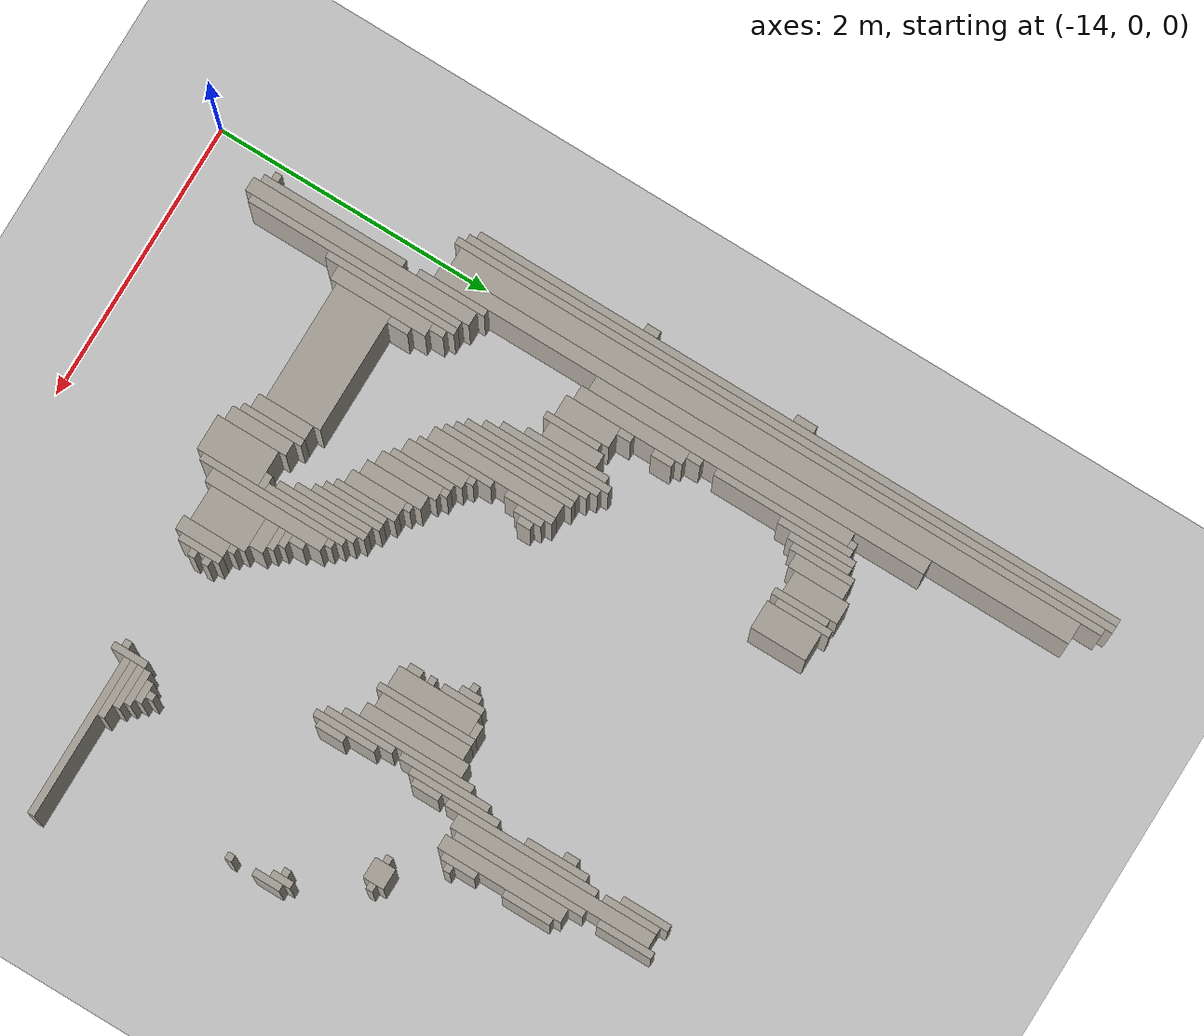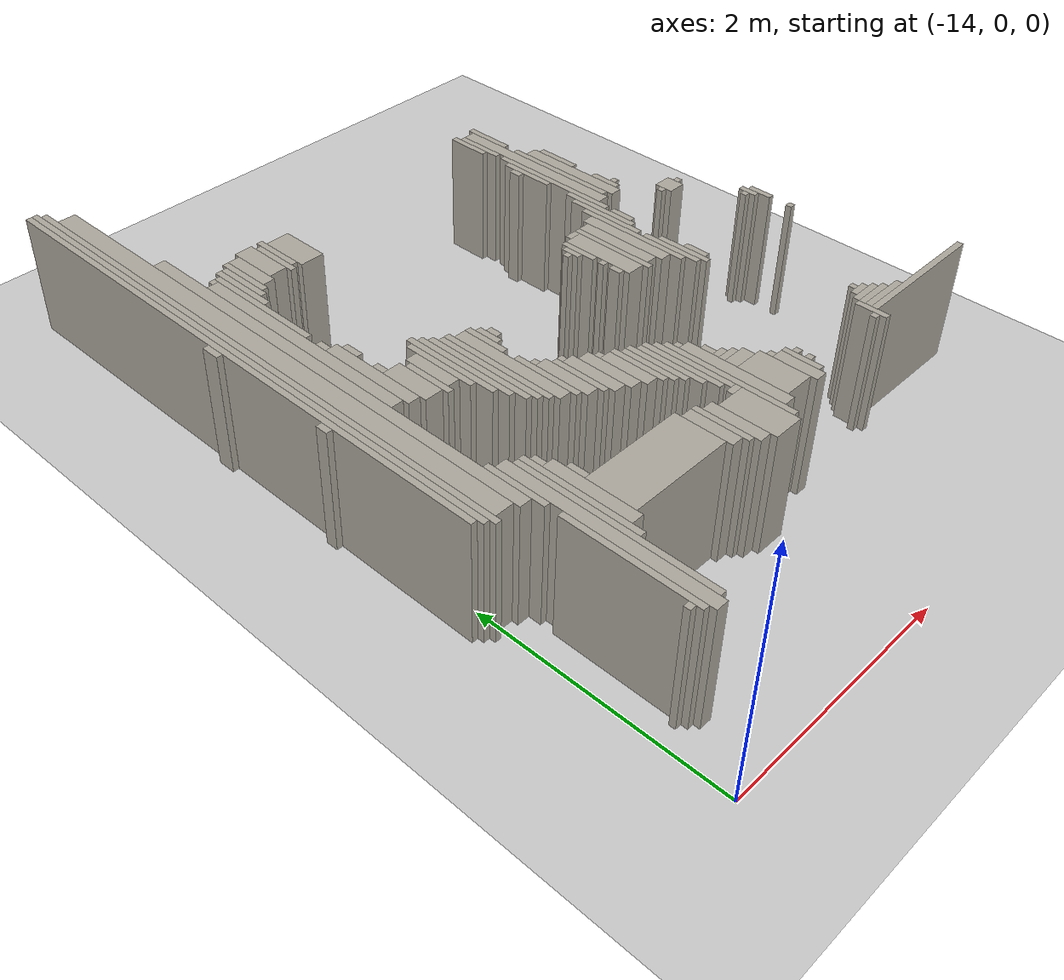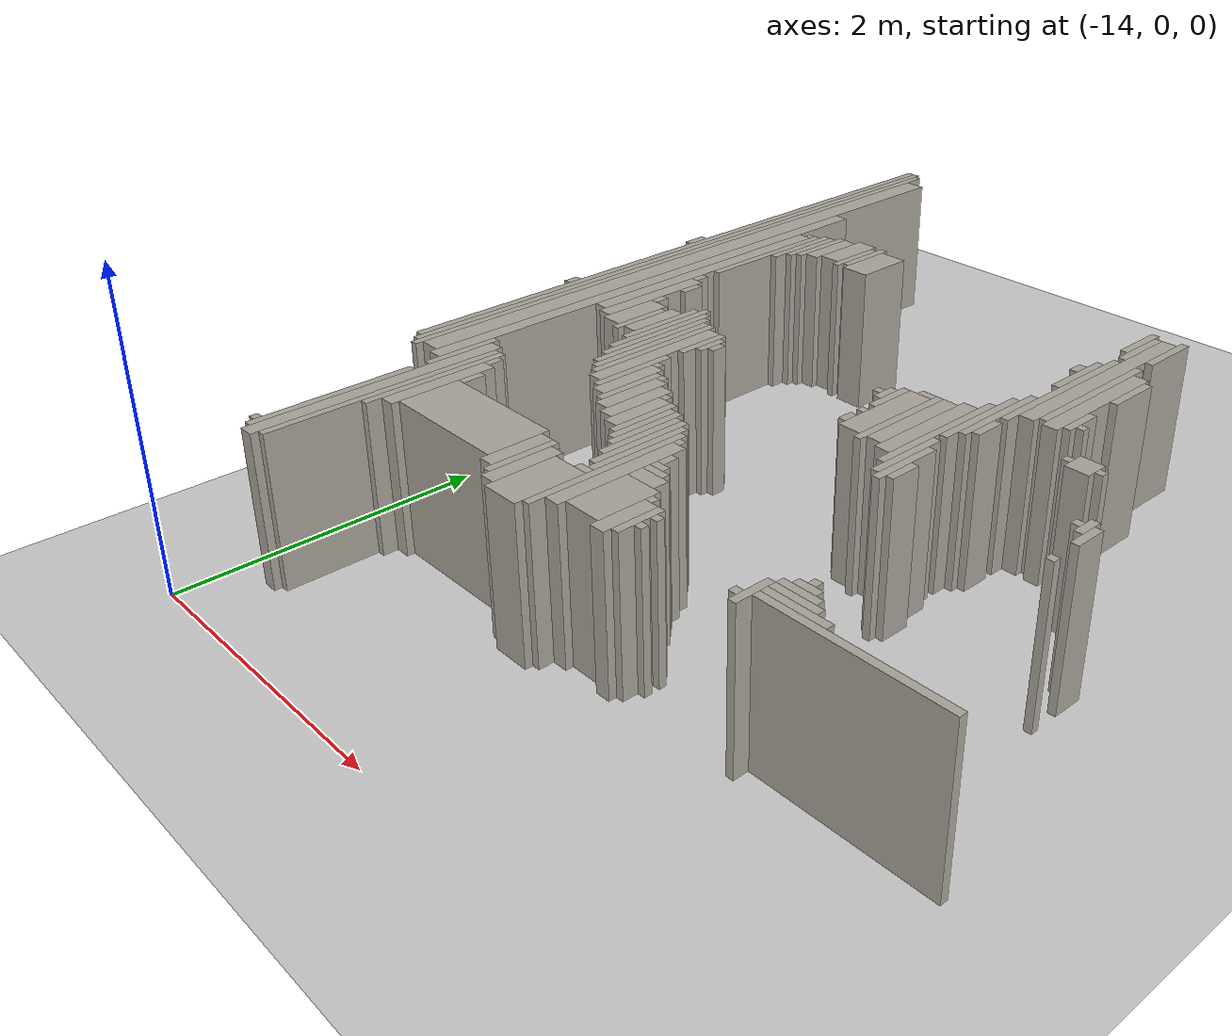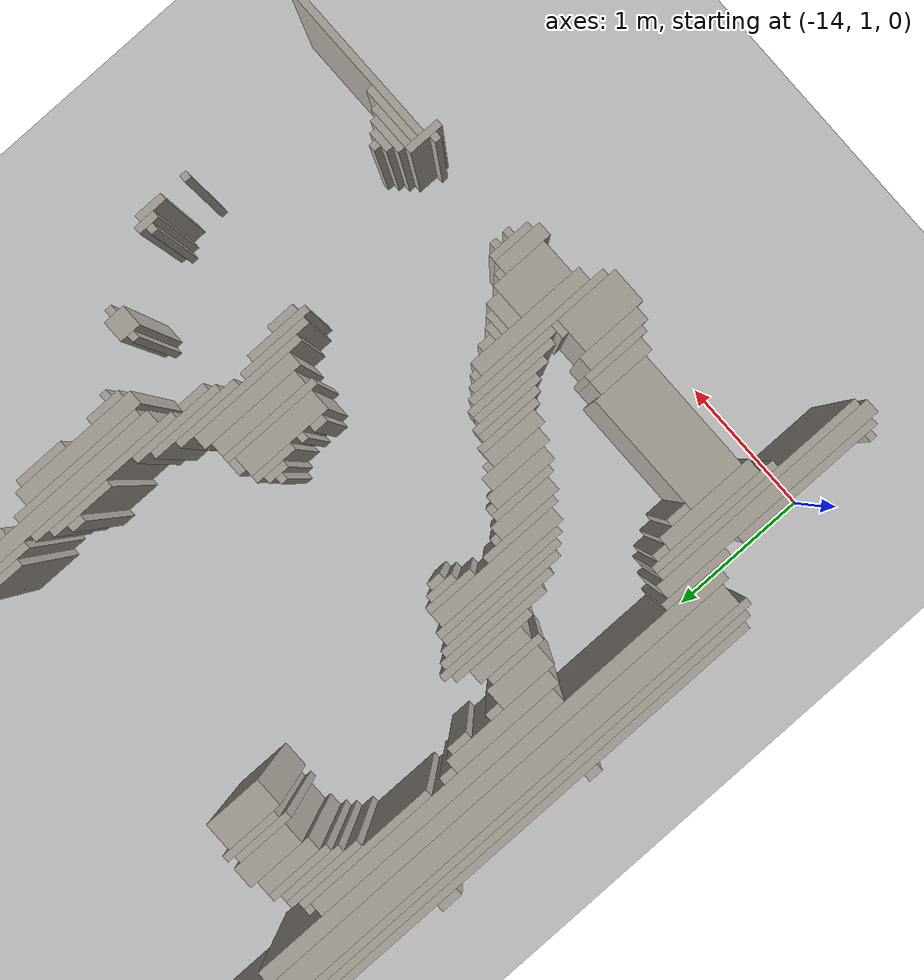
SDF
<sdf version="1.6">
 <world name="fr079_office">
  <include><uri>model://sun</uri></include>
  <include><uri>model://ground_plane</uri></include>
  <model name="fr079_office_walls">
   <static>true</static>
   <link name="w1805">
    <pose>-13.698 1.269 0.500 0 0 0</pose>
    <collision name="c"><geometry><box><size>0.100 1.650 1.000</size></box></geometry></collision>
    <visual name="v">
     <geometry><box><size>0.100 1.650 1.000</size></box></geometry>
     <material><ambient>0.68 0.66 0.62 1</ambient><diffuse>0.68 0.66 0.62 1</diffuse></material>
    </visual>
   </link>
   <link name="w1806">
    <pose>-13.773 1.019 0.500 0 0 0</pose>
    <collision name="c"><geometry><box><size>0.050 1.050 1.000</size></box></geometry></collision>
    <visual name="v">
     <geometry><box><size>0.050 1.050 1.000</size></box></geometry>
     <material><ambient>0.68 0.66 0.62 1</ambient><diffuse>0.68 0.66 0.62 1</diffuse></material>
    </visual>
   </link>
   <link name="w1807">
    <pose>-13.623 1.269 0.500 0 0 0</pose>
    <collision name="c"><geometry><box><size>0.050 1.550 1.000</size></box></geometry></collision>
    <visual name="v">
     <geometry><box><size>0.050 1.550 1.000</size></box></geometry>
     <material><ambient>0.68 0.66 0.62 1</ambient><diffuse>0.68 0.66 0.62 1</diffuse></material>
    </visual>
   </link>
   <link name="w1810">
    <pose>-13.823 0.569 0.500 0 0 0</pose>
    <collision name="c"><geometry><box><size>0.050 0.050 1.000</size></box></geometry></collision>
    <visual name="v">
     <geometry><box><size>0.050 0.050 1.000</size></box></geometry>
     <material><ambient>0.68 0.66 0.62 1</ambient><diffuse>0.68 0.66 0.62 1</diffuse></material>
    </visual>
   </link>
   <link name="w1843">
    <pose>-12.223 1.269 0.500 0 0 0</pose>
    <collision name="c"><geometry><box><size>0.250 0.450 1.000</size></box></geometry></collision>
    <visual name="v">
     <geometry><box><size>0.250 0.450 1.000</size></box></geometry>
     <material><ambient>0.68 0.66 0.62 1</ambient><diffuse>0.68 0.66 0.62 1</diffuse></material>
    </visual>
   </link>
   <link name="w1862">
    <pose>-13.573 1.569 0.500 0 0 0</pose>
    <collision name="c"><geometry><box><size>0.050 0.950 1.000</size></box></geometry></collision>
    <visual name="v">
     <geometry><box><size>0.050 0.950 1.000</size></box></geometry>
     <material><ambient>0.68 0.66 0.62 1</ambient><diffuse>0.68 0.66 0.62 1</diffuse></material>
    </visual>
   </link>
   <link name="w1863">
    <pose>-12.398 1.319 0.500 0 0 0</pose>
    <collision name="c"><geometry><box><size>0.100 0.450 1.000</size></box></geometry></collision>
    <visual name="v">
     <geometry><box><size>0.100 0.450 1.000</size></box></geometry>
     <material><ambient>0.68 0.66 0.62 1</ambient><diffuse>0.68 0.66 0.62 1</diffuse></material>
    </visual>
   </link>
   <link name="w1864">
    <pose>-12.073 1.619 0.500 0 0 0</pose>
    <collision name="c"><geometry><box><size>0.050 1.050 1.000</size></box></geometry></collision>
    <visual name="v">
     <geometry><box><size>0.050 1.050 1.000</size></box></geometry>
     <material><ambient>0.68 0.66 0.62 1</ambient><diffuse>0.68 0.66 0.62 1</diffuse></material>
    </visual>
   </link>
   <link name="w1883">
    <pose>-12.473 1.369 0.500 0 0 0</pose>
    <collision name="c"><geometry><box><size>0.050 0.450 1.000</size></box></geometry></collision>
    <visual name="v">
     <geometry><box><size>0.050 0.450 1.000</size></box></geometry>
     <material><ambient>0.68 0.66 0.62 1</ambient><diffuse>0.68 0.66 0.62 1</diffuse></material>
    </visual>
   </link>
   <link name="w1908">
    <pose>-13.498 1.544 0.500 0 0 0</pose>
    <collision name="c"><geometry><box><size>0.100 0.700 1.000</size></box></geometry></collision>
    <visual name="v">
     <geometry><box><size>0.100 0.700 1.000</size></box></geometry>
     <material><ambient>0.68 0.66 0.62 1</ambient><diffuse>0.68 0.66 0.62 1</diffuse></material>
    </visual>
   </link>
   <link name="w1909">
    <pose>-12.548 1.394 0.500 0 0 0</pose>
    <collision name="c"><geometry><box><size>0.100 0.400 1.000</size></box></geometry></collision>
    <visual name="v">
     <geometry><box><size>0.100 0.400 1.000</size></box></geometry>
     <material><ambient>0.68 0.66 0.62 1</ambient><diffuse>0.68 0.66 0.62 1</diffuse></material>
    </visual>
   </link>
   <link name="w1910">
    <pose>-11.998 1.619 0.500 0 0 0</pose>
    <collision name="c"><geometry><box><size>0.100 0.850 1.000</size></box></geometry></collision>
    <visual name="v">
     <geometry><box><size>0.100 0.850 1.000</size></box></geometry>
     <material><ambient>0.68 0.66 0.62 1</ambient><diffuse>0.68 0.66 0.62 1</diffuse></material>
    </visual>
   </link>
   <link name="w1911">
    <pose>-11.648 1.369 0.500 0 0 0</pose>
    <collision name="c"><geometry><box><size>0.100 0.350 1.000</size></box></geometry></collision>
    <visual name="v">
     <geometry><box><size>0.100 0.350 1.000</size></box></geometry>
     <material><ambient>0.68 0.66 0.62 1</ambient><diffuse>0.68 0.66 0.62 1</diffuse></material>
    </visual>
   </link>
   <link name="w1940">
    <pose>-13.023 1.444 0.500 0 0 0</pose>
    <collision name="c"><geometry><box><size>0.850 0.400 1.000</size></box></geometry></collision>
    <visual name="v">
     <geometry><box><size>0.850 0.400 1.000</size></box></geometry>
     <material><ambient>0.68 0.66 0.62 1</ambient><diffuse>0.68 0.66 0.62 1</diffuse></material>
    </visual>
   </link>
   <link name="w1941">
    <pose>-11.823 1.444 0.500 0 0 0</pose>
    <collision name="c"><geometry><box><size>0.250 0.400 1.000</size></box></geometry></collision>
    <visual name="v">
     <geometry><box><size>0.250 0.400 1.000</size></box></geometry>
     <material><ambient>0.68 0.66 0.62 1</ambient><diffuse>0.68 0.66 0.62 1</diffuse></material>
    </visual>
   </link>
   <link name="w1942">
    <pose>-11.573 1.394 0.500 0 0 0</pose>
    <collision name="c"><geometry><box><size>0.050 0.300 1.000</size></box></geometry></collision>
    <visual name="v">
     <geometry><box><size>0.050 0.300 1.000</size></box></geometry>
     <material><ambient>0.68 0.66 0.62 1</ambient><diffuse>0.68 0.66 0.62 1</diffuse></material>
    </visual>
   </link>
   <link name="w1943">
    <pose>-10.773 1.369 0.500 0 0 0</pose>
    <collision name="c"><geometry><box><size>0.050 0.250 1.000</size></box></geometry></collision>
    <visual name="v">
     <geometry><box><size>0.050 0.250 1.000</size></box></geometry>
     <material><ambient>0.68 0.66 0.62 1</ambient><diffuse>0.68 0.66 0.62 1</diffuse></material>
    </visual>
   </link>
   <link name="w1961">
    <pose>-10.823 1.319 0.500 0 0 0</pose>
    <collision name="c"><geometry><box><size>0.050 0.050 1.000</size></box></geometry></collision>
    <visual name="v">
     <geometry><box><size>0.050 0.050 1.000</size></box></geometry>
     <material><ambient>0.68 0.66 0.62 1</ambient><diffuse>0.68 0.66 0.62 1</diffuse></material>
    </visual>
   </link>
   <link name="w1973">
    <pose>-11.523 1.369 0.500 0 0 0</pose>
    <collision name="c"><geometry><box><size>0.050 0.050 1.000</size></box></geometry></collision>
    <visual name="v">
     <geometry><box><size>0.050 0.050 1.000</size></box></geometry>
     <material><ambient>0.68 0.66 0.62 1</ambient><diffuse>0.68 0.66 0.62 1</diffuse></material>
    </visual>
   </link>
   <link name="w1974">
    <pose>-10.173 1.369 0.500 0 0 0</pose>
    <collision name="c"><geometry><box><size>1.150 0.050 1.000</size></box></geometry></collision>
    <visual name="v">
     <geometry><box><size>1.150 0.050 1.000</size></box></geometry>
     <material><ambient>0.68 0.66 0.62 1</ambient><diffuse>0.68 0.66 0.62 1</diffuse></material>
    </visual>
   </link>
   <link name="w1988">
    <pose>-10.548 1.419 0.500 0 0 0</pose>
    <collision name="c"><geometry><box><size>0.400 0.050 1.000</size></box></geometry></collision>
    <visual name="v">
     <geometry><box><size>0.400 0.050 1.000</size></box></geometry>
     <material><ambient>0.68 0.66 0.62 1</ambient><diffuse>0.68 0.66 0.62 1</diffuse></material>
    </visual>
   </link>
   <link name="w2007">
    <pose>-11.523 1.469 0.500 0 0 0</pose>
    <collision name="c"><geometry><box><size>0.050 0.050 1.000</size></box></geometry></collision>
    <visual name="v">
     <geometry><box><size>0.050 0.050 1.000</size></box></geometry>
     <material><ambient>0.68 0.66 0.62 1</ambient><diffuse>0.68 0.66 0.62 1</diffuse></material>
    </visual>
   </link>
   <link name="w2008">
    <pose>-10.598 1.469 0.500 0 0 0</pose>
    <collision name="c"><geometry><box><size>0.300 0.050 1.000</size></box></geometry></collision>
    <visual name="v">
     <geometry><box><size>0.300 0.050 1.000</size></box></geometry>
     <material><ambient>0.68 0.66 0.62 1</ambient><diffuse>0.68 0.66 0.62 1</diffuse></material>
    </visual>
   </link>
   <link name="w2024">
    <pose>-12.148 1.519 0.500 0 0 0</pose>
    <collision name="c"><geometry><box><size>0.100 0.050 1.000</size></box></geometry></collision>
    <visual name="v">
     <geometry><box><size>0.100 0.050 1.000</size></box></geometry>
     <material><ambient>0.68 0.66 0.62 1</ambient><diffuse>0.68 0.66 0.62 1</diffuse></material>
    </visual>
   </link>
   <link name="w2025">
    <pose>-10.623 1.519 0.500 0 0 0</pose>
    <collision name="c"><geometry><box><size>0.250 0.050 1.000</size></box></geometry></collision>
    <visual name="v">
     <geometry><box><size>0.250 0.050 1.000</size></box></geometry>
     <material><ambient>0.68 0.66 0.62 1</ambient><diffuse>0.68 0.66 0.62 1</diffuse></material>
    </visual>
   </link>
   <link name="w2037">
    <pose>-12.123 1.869 0.500 0 0 0</pose>
    <collision name="c"><geometry><box><size>0.050 0.650 1.000</size></box></geometry></collision>
    <visual name="v">
     <geometry><box><size>0.050 0.650 1.000</size></box></geometry>
     <material><ambient>0.68 0.66 0.62 1</ambient><diffuse>0.68 0.66 0.62 1</diffuse></material>
    </visual>
   </link>
   <link name="w2038">
    <pose>-11.673 1.569 0.500 0 0 0</pose>
    <collision name="c"><geometry><box><size>0.050 0.050 1.000</size></box></geometry></collision>
    <visual name="v">
     <geometry><box><size>0.050 0.050 1.000</size></box></geometry>
     <material><ambient>0.68 0.66 0.62 1</ambient><diffuse>0.68 0.66 0.62 1</diffuse></material>
    </visual>
   </link>
   <link name="w2039">
    <pose>-10.623 1.569 0.500 0 0 0</pose>
    <collision name="c"><geometry><box><size>0.150 0.050 1.000</size></box></geometry></collision>
    <visual name="v">
     <geometry><box><size>0.150 0.050 1.000</size></box></geometry>
     <material><ambient>0.68 0.66 0.62 1</ambient><diffuse>0.68 0.66 0.62 1</diffuse></material>
    </visual>
   </link>
   <link name="w2055">
    <pose>-12.173 1.919 0.500 0 0 0</pose>
    <collision name="c"><geometry><box><size>0.050 0.650 1.000</size></box></geometry></collision>
    <visual name="v">
     <geometry><box><size>0.050 0.650 1.000</size></box></geometry>
     <material><ambient>0.68 0.66 0.62 1</ambient><diffuse>0.68 0.66 0.62 1</diffuse></material>
    </visual>
   </link>
   <link name="w2056">
    <pose>-10.623 1.619 0.500 0 0 0</pose>
    <collision name="c"><geometry><box><size>0.050 0.050 1.000</size></box></geometry></collision>
    <visual name="v">
     <geometry><box><size>0.050 0.050 1.000</size></box></geometry>
     <material><ambient>0.68 0.66 0.62 1</ambient><diffuse>0.68 0.66 0.62 1</diffuse></material>
    </visual>
   </link>
   <link name="w2068">
    <pose>-13.773 1.894 0.500 0 0 0</pose>
    <collision name="c"><geometry><box><size>0.050 0.500 1.000</size></box></geometry></collision>
    <visual name="v">
     <geometry><box><size>0.050 0.500 1.000</size></box></geometry>
     <material><ambient>0.68 0.66 0.62 1</ambient><diffuse>0.68 0.66 0.62 1</diffuse></material>
    </visual>
   </link>
   <link name="w2069">
    <pose>-13.423 1.719 0.500 0 0 0</pose>
    <collision name="c"><geometry><box><size>0.050 0.150 1.000</size></box></geometry></collision>
    <visual name="v">
     <geometry><box><size>0.050 0.150 1.000</size></box></geometry>
     <material><ambient>0.68 0.66 0.62 1</ambient><diffuse>0.68 0.66 0.62 1</diffuse></material>
    </visual>
   </link>
   <link name="w2070">
    <pose>-11.848 1.694 0.500 0 0 0</pose>
    <collision name="c"><geometry><box><size>0.200 0.100 1.000</size></box></geometry></collision>
    <visual name="v">
     <geometry><box><size>0.200 0.100 1.000</size></box></geometry>
     <material><ambient>0.68 0.66 0.62 1</ambient><diffuse>0.68 0.66 0.62 1</diffuse></material>
    </visual>
   </link>
   <link name="w2080">
    <pose>-12.223 1.969 0.500 0 0 0</pose>
    <collision name="c"><geometry><box><size>0.050 0.550 1.000</size></box></geometry></collision>
    <visual name="v">
     <geometry><box><size>0.050 0.550 1.000</size></box></geometry>
     <material><ambient>0.68 0.66 0.62 1</ambient><diffuse>0.68 0.66 0.62 1</diffuse></material>
    </visual>
   </link>
   <link name="w2092">
    <pose>-14.073 4.119 0.500 0 0 0</pose>
    <collision name="c"><geometry><box><size>0.050 4.750 1.000</size></box></geometry></collision>
    <visual name="v">
     <geometry><box><size>0.050 4.750 1.000</size></box></geometry>
     <material><ambient>0.68 0.66 0.62 1</ambient><diffuse>0.68 0.66 0.62 1</diffuse></material>
    </visual>
   </link>
   <link name="w2093">
    <pose>-13.848 3.544 0.500 0 0 0</pose>
    <collision name="c"><geometry><box><size>0.100 3.600 1.000</size></box></geometry></collision>
    <visual name="v">
     <geometry><box><size>0.100 3.600 1.000</size></box></geometry>
     <material><ambient>0.68 0.66 0.62 1</ambient><diffuse>0.68 0.66 0.62 1</diffuse></material>
    </visual>
   </link>
   <link name="w2094">
    <pose>-11.873 1.769 0.500 0 0 0</pose>
    <collision name="c"><geometry><box><size>0.150 0.050 1.000</size></box></geometry></collision>
    <visual name="v">
     <geometry><box><size>0.150 0.050 1.000</size></box></geometry>
     <material><ambient>0.68 0.66 0.62 1</ambient><diffuse>0.68 0.66 0.62 1</diffuse></material>
    </visual>
   </link>
   <link name="w2106">
    <pose>-14.123 4.169 0.500 0 0 0</pose>
    <collision name="c"><geometry><box><size>0.050 4.750 1.000</size></box></geometry></collision>
    <visual name="v">
     <geometry><box><size>0.050 4.750 1.000</size></box></geometry>
     <material><ambient>0.68 0.66 0.62 1</ambient><diffuse>0.68 0.66 0.62 1</diffuse></material>
    </visual>
   </link>
   <link name="w2107">
    <pose>-13.973 4.069 0.500 0 0 0</pose>
    <collision name="c"><geometry><box><size>0.150 4.550 1.000</size></box></geometry></collision>
    <visual name="v">
     <geometry><box><size>0.150 4.550 1.000</size></box></geometry>
     <material><ambient>0.68 0.66 0.62 1</ambient><diffuse>0.68 0.66 0.62 1</diffuse></material>
    </visual>
   </link>
   <link name="w2108">
    <pose>-12.273 2.044 0.500 0 0 0</pose>
    <collision name="c"><geometry><box><size>0.050 0.500 1.000</size></box></geometry></collision>
    <visual name="v">
     <geometry><box><size>0.050 0.500 1.000</size></box></geometry>
     <material><ambient>0.68 0.66 0.62 1</ambient><diffuse>0.68 0.66 0.62 1</diffuse></material>
    </visual>
   </link>
   <link name="w2109">
    <pose>-11.898 1.819 0.500 0 0 0</pose>
    <collision name="c"><geometry><box><size>0.100 0.050 1.000</size></box></geometry></collision>
    <visual name="v">
     <geometry><box><size>0.100 0.050 1.000</size></box></geometry>
     <material><ambient>0.68 0.66 0.62 1</ambient><diffuse>0.68 0.66 0.62 1</diffuse></material>
    </visual>
   </link>
   <link name="w2130">
    <pose>-14.173 4.194 0.500 0 0 0</pose>
    <collision name="c"><geometry><box><size>0.050 4.700 1.000</size></box></geometry></collision>
    <visual name="v">
     <geometry><box><size>0.050 4.700 1.000</size></box></geometry>
     <material><ambient>0.68 0.66 0.62 1</ambient><diffuse>0.68 0.66 0.62 1</diffuse></material>
    </visual>
   </link>
   <link name="w2131">
    <pose>-12.323 2.069 0.500 0 0 0</pose>
    <collision name="c"><geometry><box><size>0.050 0.450 1.000</size></box></geometry></collision>
    <visual name="v">
     <geometry><box><size>0.050 0.450 1.000</size></box></geometry>
     <material><ambient>0.68 0.66 0.62 1</ambient><diffuse>0.68 0.66 0.62 1</diffuse></material>
    </visual>
   </link>
   <link name="w2132">
    <pose>-11.923 1.894 0.500 0 0 0</pose>
    <collision name="c"><geometry><box><size>0.050 0.100 1.000</size></box></geometry></collision>
    <visual name="v">
     <geometry><box><size>0.050 0.100 1.000</size></box></geometry>
     <material><ambient>0.68 0.66 0.62 1</ambient><diffuse>0.68 0.66 0.62 1</diffuse></material>
    </visual>
   </link>
   <link name="w2148">
    <pose>-13.523 1.944 0.500 0 0 0</pose>
    <collision name="c"><geometry><box><size>0.050 0.100 1.000</size></box></geometry></collision>
    <visual name="v">
     <geometry><box><size>0.050 0.100 1.000</size></box></geometry>
     <material><ambient>0.68 0.66 0.62 1</ambient><diffuse>0.68 0.66 0.62 1</diffuse></material>
    </visual>
   </link>
   <link name="w2149">
    <pose>-12.373 2.119 0.500 0 0 0</pose>
    <collision name="c"><geometry><box><size>0.050 0.450 1.000</size></box></geometry></collision>
    <visual name="v">
     <geometry><box><size>0.050 0.450 1.000</size></box></geometry>
     <material><ambient>0.68 0.66 0.62 1</ambient><diffuse>0.68 0.66 0.62 1</diffuse></material>
    </visual>
   </link>
   <link name="w2156">
    <pose>-12.448 2.144 0.500 0 0 0</pose>
    <collision name="c"><geometry><box><size>0.100 0.400 1.000</size></box></geometry></collision>
    <visual name="v">
     <geometry><box><size>0.100 0.400 1.000</size></box></geometry>
     <material><ambient>0.68 0.66 0.62 1</ambient><diffuse>0.68 0.66 0.62 1</diffuse></material>
    </visual>
   </link>
   <link name="w2171">
    <pose>-12.548 2.219 0.500 0 0 0</pose>
    <collision name="c"><geometry><box><size>0.100 0.450 1.000</size></box></geometry></collision>
    <visual name="v">
     <geometry><box><size>0.100 0.450 1.000</size></box></geometry>
     <material><ambient>0.68 0.66 0.62 1</ambient><diffuse>0.68 0.66 0.62 1</diffuse></material>
    </visual>
   </link>
   <link name="w2181">
    <pose>-12.648 2.269 0.500 0 0 0</pose>
    <collision name="c"><geometry><box><size>0.100 0.450 1.000</size></box></geometry></collision>
    <visual name="v">
     <geometry><box><size>0.100 0.450 1.000</size></box></geometry>
     <material><ambient>0.68 0.66 0.62 1</ambient><diffuse>0.68 0.66 0.62 1</diffuse></material>
    </visual>
   </link>
   <link name="w2182">
    <pose>-12.023 2.069 0.500 0 0 0</pose>
    <collision name="c"><geometry><box><size>0.050 0.050 1.000</size></box></geometry></collision>
    <visual name="v">
     <geometry><box><size>0.050 0.050 1.000</size></box></geometry>
     <material><ambient>0.68 0.66 0.62 1</ambient><diffuse>0.68 0.66 0.62 1</diffuse></material>
    </visual>
   </link>
   <link name="w2192">
    <pose>-12.723 2.319 0.500 0 0 0</pose>
    <collision name="c"><geometry><box><size>0.050 0.450 1.000</size></box></geometry></collision>
    <visual name="v">
     <geometry><box><size>0.050 0.450 1.000</size></box></geometry>
     <material><ambient>0.68 0.66 0.62 1</ambient><diffuse>0.68 0.66 0.62 1</diffuse></material>
    </visual>
   </link>
   <link name="w2202">
    <pose>-12.798 2.369 0.500 0 0 0</pose>
    <collision name="c"><geometry><box><size>0.100 0.450 1.000</size></box></geometry></collision>
    <visual name="v">
     <geometry><box><size>0.100 0.450 1.000</size></box></geometry>
     <material><ambient>0.68 0.66 0.62 1</ambient><diffuse>0.68 0.66 0.62 1</diffuse></material>
    </visual>
   </link>
   <link name="w2209">
    <pose>-12.873 2.469 0.500 0 0 0</pose>
    <collision name="c"><geometry><box><size>0.050 0.550 1.000</size></box></geometry></collision>
    <visual name="v">
     <geometry><box><size>0.050 0.550 1.000</size></box></geometry>
     <material><ambient>0.68 0.66 0.62 1</ambient><diffuse>0.68 0.66 0.62 1</diffuse></material>
    </visual>
   </link>
   <link name="w2222">
    <pose>-12.948 2.719 0.500 0 0 0</pose>
    <collision name="c"><geometry><box><size>0.100 0.950 1.000</size></box></geometry></collision>
    <visual name="v">
     <geometry><box><size>0.100 0.950 1.000</size></box></geometry>
     <material><ambient>0.68 0.66 0.62 1</ambient><diffuse>0.68 0.66 0.62 1</diffuse></material>
    </visual>
   </link>
   <link name="w2231">
    <pose>-13.023 2.769 0.500 0 0 0</pose>
    <collision name="c"><geometry><box><size>0.050 0.950 1.000</size></box></geometry></collision>
    <visual name="v">
     <geometry><box><size>0.050 0.950 1.000</size></box></geometry>
     <material><ambient>0.68 0.66 0.62 1</ambient><diffuse>0.68 0.66 0.62 1</diffuse></material>
    </visual>
   </link>
   <link name="w2242">
    <pose>-13.073 2.794 0.500 0 0 0</pose>
    <collision name="c"><geometry><box><size>0.050 0.900 1.000</size></box></geometry></collision>
    <visual name="v">
     <geometry><box><size>0.050 0.900 1.000</size></box></geometry>
     <material><ambient>0.68 0.66 0.62 1</ambient><diffuse>0.68 0.66 0.62 1</diffuse></material>
    </visual>
   </link>
   <link name="w2243">
    <pose>-12.473 2.369 0.500 0 0 0</pose>
    <collision name="c"><geometry><box><size>0.050 0.050 1.000</size></box></geometry></collision>
    <visual name="v">
     <geometry><box><size>0.050 0.050 1.000</size></box></geometry>
     <material><ambient>0.68 0.66 0.62 1</ambient><diffuse>0.68 0.66 0.62 1</diffuse></material>
    </visual>
   </link>
   <link name="w2253">
    <pose>-13.123 2.844 0.500 0 0 0</pose>
    <collision name="c"><geometry><box><size>0.050 0.900 1.000</size></box></geometry></collision>
    <visual name="v">
     <geometry><box><size>0.050 0.900 1.000</size></box></geometry>
     <material><ambient>0.68 0.66 0.62 1</ambient><diffuse>0.68 0.66 0.62 1</diffuse></material>
    </visual>
   </link>
   <link name="w2268">
    <pose>-13.173 2.919 0.500 0 0 0</pose>
    <collision name="c"><geometry><box><size>0.050 0.850 1.000</size></box></geometry></collision>
    <visual name="v">
     <geometry><box><size>0.050 0.850 1.000</size></box></geometry>
     <material><ambient>0.68 0.66 0.62 1</ambient><diffuse>0.68 0.66 0.62 1</diffuse></material>
    </visual>
   </link>
   <link name="w2269">
    <pose>-12.673 2.519 0.500 0 0 0</pose>
    <collision name="c"><geometry><box><size>0.050 0.050 1.000</size></box></geometry></collision>
    <visual name="v">
     <geometry><box><size>0.050 0.050 1.000</size></box></geometry>
     <material><ambient>0.68 0.66 0.62 1</ambient><diffuse>0.68 0.66 0.62 1</diffuse></material>
    </visual>
   </link>
   <link name="w2284">
    <pose>-11.073 2.769 0.500 0 0 0</pose>
    <collision name="c"><geometry><box><size>0.050 0.450 1.000</size></box></geometry></collision>
    <visual name="v">
     <geometry><box><size>0.050 0.450 1.000</size></box></geometry>
     <material><ambient>0.68 0.66 0.62 1</ambient><diffuse>0.68 0.66 0.62 1</diffuse></material>
    </visual>
   </link>
   <link name="w2285">
    <pose>-10.023 2.569 0.500 0 0 0</pose>
    <collision name="c"><geometry><box><size>0.050 0.050 1.000</size></box></geometry></collision>
    <visual name="v">
     <geometry><box><size>0.050 0.050 1.000</size></box></geometry>
     <material><ambient>0.68 0.66 0.62 1</ambient><diffuse>0.68 0.66 0.62 1</diffuse></material>
    </visual>
   </link>
   <link name="w2308">
    <pose>-13.223 2.994 0.500 0 0 0</pose>
    <collision name="c"><geometry><box><size>0.050 0.800 1.000</size></box></geometry></collision>
    <visual name="v">
     <geometry><box><size>0.050 0.800 1.000</size></box></geometry>
     <material><ambient>0.68 0.66 0.62 1</ambient><diffuse>0.68 0.66 0.62 1</diffuse></material>
    </visual>
   </link>
   <link name="w2309">
    <pose>-12.823 2.619 0.500 0 0 0</pose>
    <collision name="c"><geometry><box><size>0.050 0.050 1.000</size></box></geometry></collision>
    <visual name="v">
     <geometry><box><size>0.050 0.050 1.000</size></box></geometry>
     <material><ambient>0.68 0.66 0.62 1</ambient><diffuse>0.68 0.66 0.62 1</diffuse></material>
    </visual>
   </link>
   <link name="w2310">
    <pose>-11.123 2.844 0.500 0 0 0</pose>
    <collision name="c"><geometry><box><size>0.050 0.500 1.000</size></box></geometry></collision>
    <visual name="v">
     <geometry><box><size>0.050 0.500 1.000</size></box></geometry>
     <material><ambient>0.68 0.66 0.62 1</ambient><diffuse>0.68 0.66 0.62 1</diffuse></material>
    </visual>
   </link>
   <link name="w2311">
    <pose>-11.023 2.694 0.500 0 0 0</pose>
    <collision name="c"><geometry><box><size>0.050 0.200 1.000</size></box></geometry></collision>
    <visual name="v">
     <geometry><box><size>0.050 0.200 1.000</size></box></geometry>
     <material><ambient>0.68 0.66 0.62 1</ambient><diffuse>0.68 0.66 0.62 1</diffuse></material>
    </visual>
   </link>
   <link name="w2332">
    <pose>-11.173 3.169 0.500 0 0 0</pose>
    <collision name="c"><geometry><box><size>0.050 0.950 1.000</size></box></geometry></collision>
    <visual name="v">
     <geometry><box><size>0.050 0.950 1.000</size></box></geometry>
     <material><ambient>0.68 0.66 0.62 1</ambient><diffuse>0.68 0.66 0.62 1</diffuse></material>
    </visual>
   </link>
   <link name="w2340">
    <pose>-13.273 3.044 0.500 0 0 0</pose>
    <collision name="c"><geometry><box><size>0.050 0.600 1.000</size></box></geometry></collision>
    <visual name="v">
     <geometry><box><size>0.050 0.600 1.000</size></box></geometry>
     <material><ambient>0.68 0.66 0.62 1</ambient><diffuse>0.68 0.66 0.62 1</diffuse></material>
    </visual>
   </link>
   <link name="w2341">
    <pose>-10.023 2.844 0.500 0 0 0</pose>
    <collision name="c"><geometry><box><size>0.050 0.200 1.000</size></box></geometry></collision>
    <visual name="v">
     <geometry><box><size>0.050 0.200 1.000</size></box></geometry>
     <material><ambient>0.68 0.66 0.62 1</ambient><diffuse>0.68 0.66 0.62 1</diffuse></material>
    </visual>
   </link>
   <link name="w2349">
    <pose>-13.423 2.994 0.500 0 0 0</pose>
    <collision name="c"><geometry><box><size>0.050 0.400 1.000</size></box></geometry></collision>
    <visual name="v">
     <geometry><box><size>0.050 0.400 1.000</size></box></geometry>
     <material><ambient>0.68 0.66 0.62 1</ambient><diffuse>0.68 0.66 0.62 1</diffuse></material>
    </visual>
   </link>
   <link name="w2350">
    <pose>-11.423 3.144 0.500 0 0 0</pose>
    <collision name="c"><geometry><box><size>0.050 0.700 1.000</size></box></geometry></collision>
    <visual name="v">
     <geometry><box><size>0.050 0.700 1.000</size></box></geometry>
     <material><ambient>0.68 0.66 0.62 1</ambient><diffuse>0.68 0.66 0.62 1</diffuse></material>
    </visual>
   </link>
   <link name="w2351">
    <pose>-11.248 3.169 0.500 0 0 0</pose>
    <collision name="c"><geometry><box><size>0.100 0.750 1.000</size></box></geometry></collision>
    <visual name="v">
     <geometry><box><size>0.100 0.750 1.000</size></box></geometry>
     <material><ambient>0.68 0.66 0.62 1</ambient><diffuse>0.68 0.66 0.62 1</diffuse></material>
    </visual>
   </link>
   <link name="w2357">
    <pose>-13.523 3.044 0.500 0 0 0</pose>
    <collision name="c"><geometry><box><size>0.150 0.400 1.000</size></box></geometry></collision>
    <visual name="v">
     <geometry><box><size>0.150 0.400 1.000</size></box></geometry>
     <material><ambient>0.68 0.66 0.62 1</ambient><diffuse>0.68 0.66 0.62 1</diffuse></material>
    </visual>
   </link>
   <link name="w2358">
    <pose>-13.348 3.044 0.500 0 0 0</pose>
    <collision name="c"><geometry><box><size>0.100 0.400 1.000</size></box></geometry></collision>
    <visual name="v">
     <geometry><box><size>0.100 0.400 1.000</size></box></geometry>
     <material><ambient>0.68 0.66 0.62 1</ambient><diffuse>0.68 0.66 0.62 1</diffuse></material>
    </visual>
   </link>
   <link name="w2359">
    <pose>-12.873 3.019 0.500 0 0 0</pose>
    <collision name="c"><geometry><box><size>0.050 0.350 1.000</size></box></geometry></collision>
    <visual name="v">
     <geometry><box><size>0.050 0.350 1.000</size></box></geometry>
     <material><ambient>0.68 0.66 0.62 1</ambient><diffuse>0.68 0.66 0.62 1</diffuse></material>
    </visual>
   </link>
   <link name="w2360">
    <pose>-11.523 3.144 0.500 0 0 0</pose>
    <collision name="c"><geometry><box><size>0.150 0.600 1.000</size></box></geometry></collision>
    <visual name="v">
     <geometry><box><size>0.150 0.600 1.000</size></box></geometry>
     <material><ambient>0.68 0.66 0.62 1</ambient><diffuse>0.68 0.66 0.62 1</diffuse></material>
    </visual>
   </link>
   <link name="w2361">
    <pose>-11.348 3.169 0.500 0 0 0</pose>
    <collision name="c"><geometry><box><size>0.100 0.650 1.000</size></box></geometry></collision>
    <visual name="v">
     <geometry><box><size>0.100 0.650 1.000</size></box></geometry>
     <material><ambient>0.68 0.66 0.62 1</ambient><diffuse>0.68 0.66 0.62 1</diffuse></material>
    </visual>
   </link>
   <link name="w2362">
    <pose>-10.073 2.919 0.500 0 0 0</pose>
    <collision name="c"><geometry><box><size>0.050 0.150 1.000</size></box></geometry></collision>
    <visual name="v">
     <geometry><box><size>0.050 0.150 1.000</size></box></geometry>
     <material><ambient>0.68 0.66 0.62 1</ambient><diffuse>0.68 0.66 0.62 1</diffuse></material>
    </visual>
   </link>
   <link name="w2368">
    <pose>-13.648 3.294 0.500 0 0 0</pose>
    <collision name="c"><geometry><box><size>0.100 0.800 1.000</size></box></geometry></collision>
    <visual name="v">
     <geometry><box><size>0.100 0.800 1.000</size></box></geometry>
     <material><ambient>0.68 0.66 0.62 1</ambient><diffuse>0.68 0.66 0.62 1</diffuse></material>
    </visual>
   </link>
   <link name="w2369">
    <pose>-11.623 2.944 0.500 0 0 0</pose>
    <collision name="c"><geometry><box><size>0.050 0.100 1.000</size></box></geometry></collision>
    <visual name="v">
     <geometry><box><size>0.050 0.100 1.000</size></box></geometry>
     <material><ambient>0.68 0.66 0.62 1</ambient><diffuse>0.68 0.66 0.62 1</diffuse></material>
    </visual>
   </link>
   <link name="w2370">
    <pose>-10.123 2.919 0.500 0 0 0</pose>
    <collision name="c"><geometry><box><size>0.050 0.050 1.000</size></box></geometry></collision>
    <visual name="v">
     <geometry><box><size>0.050 0.050 1.000</size></box></geometry>
     <material><ambient>0.68 0.66 0.62 1</ambient><diffuse>0.68 0.66 0.62 1</diffuse></material>
    </visual>
   </link>
   <link name="w2383">
    <pose>-13.748 3.894 0.500 0 0 0</pose>
    <collision name="c"><geometry><box><size>0.100 1.900 1.000</size></box></geometry></collision>
    <visual name="v">
     <geometry><box><size>0.100 1.900 1.000</size></box></geometry>
     <material><ambient>0.68 0.66 0.62 1</ambient><diffuse>0.68 0.66 0.62 1</diffuse></material>
    </visual>
   </link>
   <link name="w2384">
    <pose>-12.823 3.044 0.500 0 0 0</pose>
    <collision name="c"><geometry><box><size>0.050 0.200 1.000</size></box></geometry></collision>
    <visual name="v">
     <geometry><box><size>0.050 0.200 1.000</size></box></geometry>
     <material><ambient>0.68 0.66 0.62 1</ambient><diffuse>0.68 0.66 0.62 1</diffuse></material>
    </visual>
   </link>
   <link name="w2395">
    <pose>-12.773 3.044 0.500 0 0 0</pose>
    <collision name="c"><geometry><box><size>0.050 0.100 1.000</size></box></geometry></collision>
    <visual name="v">
     <geometry><box><size>0.050 0.100 1.000</size></box></geometry>
     <material><ambient>0.68 0.66 0.62 1</ambient><diffuse>0.68 0.66 0.62 1</diffuse></material>
    </visual>
   </link>
   <link name="w2408">
    <pose>-14.223 3.094 0.500 0 0 0</pose>
    <collision name="c"><geometry><box><size>0.050 0.100 1.000</size></box></geometry></collision>
    <visual name="v">
     <geometry><box><size>0.050 0.100 1.000</size></box></geometry>
     <material><ambient>0.68 0.66 0.62 1</ambient><diffuse>0.68 0.66 0.62 1</diffuse></material>
    </visual>
   </link>
   <link name="w2409">
    <pose>-11.623 3.069 0.500 0 0 0</pose>
    <collision name="c"><geometry><box><size>0.050 0.050 1.000</size></box></geometry></collision>
    <visual name="v">
     <geometry><box><size>0.050 0.050 1.000</size></box></geometry>
     <material><ambient>0.68 0.66 0.62 1</ambient><diffuse>0.68 0.66 0.62 1</diffuse></material>
    </visual>
   </link>
   <link name="w2440">
    <pose>-11.623 3.294 0.500 0 0 0</pose>
    <collision name="c"><geometry><box><size>0.050 0.300 1.000</size></box></geometry></collision>
    <visual name="v">
     <geometry><box><size>0.050 0.300 1.000</size></box></geometry>
     <material><ambient>0.68 0.66 0.62 1</ambient><diffuse>0.68 0.66 0.62 1</diffuse></material>
    </visual>
   </link>
   <link name="w2441">
    <pose>-11.123 3.469 0.500 0 0 0</pose>
    <collision name="c"><geometry><box><size>0.050 0.650 1.000</size></box></geometry></collision>
    <visual name="v">
     <geometry><box><size>0.050 0.650 1.000</size></box></geometry>
     <material><ambient>0.68 0.66 0.62 1</ambient><diffuse>0.68 0.66 0.62 1</diffuse></material>
    </visual>
   </link>
   <link name="w2465">
    <pose>-13.573 3.294 0.500 0 0 0</pose>
    <collision name="c"><geometry><box><size>0.050 0.100 1.000</size></box></geometry></collision>
    <visual name="v">
     <geometry><box><size>0.050 0.100 1.000</size></box></geometry>
     <material><ambient>0.68 0.66 0.62 1</ambient><diffuse>0.68 0.66 0.62 1</diffuse></material>
    </visual>
   </link>
   <link name="w2466">
    <pose>-11.673 3.319 0.500 0 0 0</pose>
    <collision name="c"><geometry><box><size>0.050 0.150 1.000</size></box></geometry></collision>
    <visual name="v">
     <geometry><box><size>0.050 0.150 1.000</size></box></geometry>
     <material><ambient>0.68 0.66 0.62 1</ambient><diffuse>0.68 0.66 0.62 1</diffuse></material>
    </visual>
   </link>
   <link name="w2467">
    <pose>-11.073 3.569 0.500 0 0 0</pose>
    <collision name="c"><geometry><box><size>0.050 0.650 1.000</size></box></geometry></collision>
    <visual name="v">
     <geometry><box><size>0.050 0.650 1.000</size></box></geometry>
     <material><ambient>0.68 0.66 0.62 1</ambient><diffuse>0.68 0.66 0.62 1</diffuse></material>
    </visual>
   </link>
   <link name="w2480">
    <pose>-11.723 3.319 0.500 0 0 0</pose>
    <collision name="c"><geometry><box><size>0.050 0.050 1.000</size></box></geometry></collision>
    <visual name="v">
     <geometry><box><size>0.050 0.050 1.000</size></box></geometry>
     <material><ambient>0.68 0.66 0.62 1</ambient><diffuse>0.68 0.66 0.62 1</diffuse></material>
    </visual>
   </link>
   <link name="w2481">
    <pose>-11.023 3.394 0.500 0 0 0</pose>
    <collision name="c"><geometry><box><size>0.050 0.200 1.000</size></box></geometry></collision>
    <visual name="v">
     <geometry><box><size>0.050 0.200 1.000</size></box></geometry>
     <material><ambient>0.68 0.66 0.62 1</ambient><diffuse>0.68 0.66 0.62 1</diffuse></material>
    </visual>
   </link>
   <link name="w2492">
    <pose>-10.423 3.419 0.500 0 0 0</pose>
    <collision name="c"><geometry><box><size>0.150 0.150 1.000</size></box></geometry></collision>
    <visual name="v">
     <geometry><box><size>0.150 0.150 1.000</size></box></geometry>
     <material><ambient>0.68 0.66 0.62 1</ambient><diffuse>0.68 0.66 0.62 1</diffuse></material>
    </visual>
   </link>
   <link name="w2506">
    <pose>-10.523 3.419 0.500 0 0 0</pose>
    <collision name="c"><geometry><box><size>0.050 0.050 1.000</size></box></geometry></collision>
    <visual name="v">
     <geometry><box><size>0.050 0.050 1.000</size></box></geometry>
     <material><ambient>0.68 0.66 0.62 1</ambient><diffuse>0.68 0.66 0.62 1</diffuse></material>
    </visual>
   </link>
   <link name="w2507">
    <pose>-10.323 3.419 0.500 0 0 0</pose>
    <collision name="c"><geometry><box><size>0.050 0.050 1.000</size></box></geometry></collision>
    <visual name="v">
     <geometry><box><size>0.050 0.050 1.000</size></box></geometry>
     <material><ambient>0.68 0.66 0.62 1</ambient><diffuse>0.68 0.66 0.62 1</diffuse></material>
    </visual>
   </link>
   <link name="w2517">
    <pose>-11.498 3.469 0.500 0 0 0</pose>
    <collision name="c"><geometry><box><size>0.100 0.050 1.000</size></box></geometry></collision>
    <visual name="v">
     <geometry><box><size>0.100 0.050 1.000</size></box></geometry>
     <material><ambient>0.68 0.66 0.62 1</ambient><diffuse>0.68 0.66 0.62 1</diffuse></material>
    </visual>
   </link>
   <link name="w2524">
    <pose>-13.573 3.569 0.500 0 0 0</pose>
    <collision name="c"><geometry><box><size>0.050 0.150 1.000</size></box></geometry></collision>
    <visual name="v">
     <geometry><box><size>0.050 0.150 1.000</size></box></geometry>
     <material><ambient>0.68 0.66 0.62 1</ambient><diffuse>0.68 0.66 0.62 1</diffuse></material>
    </visual>
   </link>
   <link name="w2535">
    <pose>-11.023 4.094 0.500 0 0 0</pose>
    <collision name="c"><geometry><box><size>0.050 1.100 1.000</size></box></geometry></collision>
    <visual name="v">
     <geometry><box><size>0.050 1.100 1.000</size></box></geometry>
     <material><ambient>0.68 0.66 0.62 1</ambient><diffuse>0.68 0.66 0.62 1</diffuse></material>
    </visual>
   </link>
   <link name="w2549">
    <pose>-10.948 4.369 0.500 0 0 0</pose>
    <collision name="c"><geometry><box><size>0.100 1.450 1.000</size></box></geometry></collision>
    <visual name="v">
     <geometry><box><size>0.100 1.450 1.000</size></box></geometry>
     <material><ambient>0.68 0.66 0.62 1</ambient><diffuse>0.68 0.66 0.62 1</diffuse></material>
    </visual>
   </link>
   <link name="w2550">
    <pose>-10.798 4.094 0.500 0 0 0</pose>
    <collision name="c"><geometry><box><size>0.100 0.900 1.000</size></box></geometry></collision>
    <visual name="v">
     <geometry><box><size>0.100 0.900 1.000</size></box></geometry>
     <material><ambient>0.68 0.66 0.62 1</ambient><diffuse>0.68 0.66 0.62 1</diffuse></material>
    </visual>
   </link>
   <link name="w2557">
    <pose>-13.673 3.744 0.500 0 0 0</pose>
    <collision name="c"><geometry><box><size>0.050 0.100 1.000</size></box></geometry></collision>
    <visual name="v">
     <geometry><box><size>0.050 0.100 1.000</size></box></geometry>
     <material><ambient>0.68 0.66 0.62 1</ambient><diffuse>0.68 0.66 0.62 1</diffuse></material>
    </visual>
   </link>
   <link name="w2558">
    <pose>-10.873 4.169 0.500 0 0 0</pose>
    <collision name="c"><geometry><box><size>0.050 0.950 1.000</size></box></geometry></collision>
    <visual name="v">
     <geometry><box><size>0.050 0.950 1.000</size></box></geometry>
     <material><ambient>0.68 0.66 0.62 1</ambient><diffuse>0.68 0.66 0.62 1</diffuse></material>
    </visual>
   </link>
   <link name="w2559">
    <pose>-10.723 3.819 0.500 0 0 0</pose>
    <collision name="c"><geometry><box><size>0.050 0.250 1.000</size></box></geometry></collision>
    <visual name="v">
     <geometry><box><size>0.050 0.250 1.000</size></box></geometry>
     <material><ambient>0.68 0.66 0.62 1</ambient><diffuse>0.68 0.66 0.62 1</diffuse></material>
    </visual>
   </link>
   <link name="w2564">
    <pose>-10.673 3.769 0.500 0 0 0</pose>
    <collision name="c"><geometry><box><size>0.050 0.050 1.000</size></box></geometry></collision>
    <visual name="v">
     <geometry><box><size>0.050 0.050 1.000</size></box></geometry>
     <material><ambient>0.68 0.66 0.62 1</ambient><diffuse>0.68 0.66 0.62 1</diffuse></material>
    </visual>
   </link>
   <link name="w2590">
    <pose>-13.673 4.394 0.500 0 0 0</pose>
    <collision name="c"><geometry><box><size>0.050 1.000 1.000</size></box></geometry></collision>
    <visual name="v">
     <geometry><box><size>0.050 1.000 1.000</size></box></geometry>
     <material><ambient>0.68 0.66 0.62 1</ambient><diffuse>0.68 0.66 0.62 1</diffuse></material>
    </visual>
   </link>
   <link name="w2631">
    <pose>-11.073 4.319 0.500 0 0 0</pose>
    <collision name="c"><geometry><box><size>0.050 0.450 1.000</size></box></geometry></collision>
    <visual name="v">
     <geometry><box><size>0.050 0.450 1.000</size></box></geometry>
     <material><ambient>0.68 0.66 0.62 1</ambient><diffuse>0.68 0.66 0.62 1</diffuse></material>
    </visual>
   </link>
   <link name="w2647">
    <pose>-14.223 4.219 0.500 0 0 0</pose>
    <collision name="c"><geometry><box><size>0.050 0.150 1.000</size></box></geometry></collision>
    <visual name="v">
     <geometry><box><size>0.050 0.150 1.000</size></box></geometry>
     <material><ambient>0.68 0.66 0.62 1</ambient><diffuse>0.68 0.66 0.62 1</diffuse></material>
    </visual>
   </link>
   <link name="w2648">
    <pose>-10.723 4.319 0.500 0 0 0</pose>
    <collision name="c"><geometry><box><size>0.050 0.350 1.000</size></box></geometry></collision>
    <visual name="v">
     <geometry><box><size>0.050 0.350 1.000</size></box></geometry>
     <material><ambient>0.68 0.66 0.62 1</ambient><diffuse>0.68 0.66 0.62 1</diffuse></material>
    </visual>
   </link>
   <link name="w2690">
    <pose>-11.123 4.394 0.500 0 0 0</pose>
    <collision name="c"><geometry><box><size>0.050 0.100 1.000</size></box></geometry></collision>
    <visual name="v">
     <geometry><box><size>0.050 0.100 1.000</size></box></geometry>
     <material><ambient>0.68 0.66 0.62 1</ambient><diffuse>0.68 0.66 0.62 1</diffuse></material>
    </visual>
   </link>
   <link name="w2695">
    <pose>-13.623 4.669 0.500 0 0 0</pose>
    <collision name="c"><geometry><box><size>0.050 0.550 1.000</size></box></geometry></collision>
    <visual name="v">
     <geometry><box><size>0.050 0.550 1.000</size></box></geometry>
     <material><ambient>0.68 0.66 0.62 1</ambient><diffuse>0.68 0.66 0.62 1</diffuse></material>
    </visual>
   </link>
   <link name="w2710">
    <pose>-13.573 4.719 0.500 0 0 0</pose>
    <collision name="c"><geometry><box><size>0.050 0.450 1.000</size></box></geometry></collision>
    <visual name="v">
     <geometry><box><size>0.050 0.450 1.000</size></box></geometry>
     <material><ambient>0.68 0.66 0.62 1</ambient><diffuse>0.68 0.66 0.62 1</diffuse></material>
    </visual>
   </link>
   <link name="w2715">
    <pose>-13.523 4.769 0.500 0 0 0</pose>
    <collision name="c"><geometry><box><size>0.050 0.450 1.000</size></box></geometry></collision>
    <visual name="v">
     <geometry><box><size>0.050 0.450 1.000</size></box></geometry>
     <material><ambient>0.68 0.66 0.62 1</ambient><diffuse>0.68 0.66 0.62 1</diffuse></material>
    </visual>
   </link>
   <link name="w2723">
    <pose>-13.448 4.794 0.500 0 0 0</pose>
    <collision name="c"><geometry><box><size>0.100 0.400 1.000</size></box></geometry></collision>
    <visual name="v">
     <geometry><box><size>0.100 0.400 1.000</size></box></geometry>
     <material><ambient>0.68 0.66 0.62 1</ambient><diffuse>0.68 0.66 0.62 1</diffuse></material>
    </visual>
   </link>
   <link name="w2724">
    <pose>-13.223 4.794 0.500 0 0 0</pose>
    <collision name="c"><geometry><box><size>0.050 0.400 1.000</size></box></geometry></collision>
    <visual name="v">
     <geometry><box><size>0.050 0.400 1.000</size></box></geometry>
     <material><ambient>0.68 0.66 0.62 1</ambient><diffuse>0.68 0.66 0.62 1</diffuse></material>
    </visual>
   </link>
   <link name="w2725">
    <pose>-13.048 4.794 0.500 0 0 0</pose>
    <collision name="c"><geometry><box><size>0.200 0.400 1.000</size></box></geometry></collision>
    <visual name="v">
     <geometry><box><size>0.200 0.400 1.000</size></box></geometry>
     <material><ambient>0.68 0.66 0.62 1</ambient><diffuse>0.68 0.66 0.62 1</diffuse></material>
    </visual>
   </link>
   <link name="w2737">
    <pose>-13.323 4.844 0.500 0 0 0</pose>
    <collision name="c"><geometry><box><size>0.150 0.400 1.000</size></box></geometry></collision>
    <visual name="v">
     <geometry><box><size>0.150 0.400 1.000</size></box></geometry>
     <material><ambient>0.68 0.66 0.62 1</ambient><diffuse>0.68 0.66 0.62 1</diffuse></material>
    </visual>
   </link>
   <link name="w2738">
    <pose>-13.173 4.844 0.500 0 0 0</pose>
    <collision name="c"><geometry><box><size>0.050 0.400 1.000</size></box></geometry></collision>
    <visual name="v">
     <geometry><box><size>0.050 0.400 1.000</size></box></geometry>
     <material><ambient>0.68 0.66 0.62 1</ambient><diffuse>0.68 0.66 0.62 1</diffuse></material>
    </visual>
   </link>
   <link name="w2747">
    <pose>-11.023 4.894 0.500 0 0 0</pose>
    <collision name="c"><geometry><box><size>0.050 0.400 1.000</size></box></geometry></collision>
    <visual name="v">
     <geometry><box><size>0.050 0.400 1.000</size></box></geometry>
     <material><ambient>0.68 0.66 0.62 1</ambient><diffuse>0.68 0.66 0.62 1</diffuse></material>
    </visual>
   </link>
   <link name="w2752">
    <pose>-10.873 4.944 0.500 0 0 0</pose>
    <collision name="c"><geometry><box><size>0.050 0.400 1.000</size></box></geometry></collision>
    <visual name="v">
     <geometry><box><size>0.050 0.400 1.000</size></box></geometry>
     <material><ambient>0.68 0.66 0.62 1</ambient><diffuse>0.68 0.66 0.62 1</diffuse></material>
    </visual>
   </link>
   <link name="w2757">
    <pose>-11.073 4.969 0.500 0 0 0</pose>
    <collision name="c"><geometry><box><size>0.050 0.350 1.000</size></box></geometry></collision>
    <visual name="v">
     <geometry><box><size>0.050 0.350 1.000</size></box></geometry>
     <material><ambient>0.68 0.66 0.62 1</ambient><diffuse>0.68 0.66 0.62 1</diffuse></material>
    </visual>
   </link>
   <link name="w2767">
    <pose>-13.723 4.869 0.500 0 0 0</pose>
    <collision name="c"><geometry><box><size>0.050 0.050 1.000</size></box></geometry></collision>
    <visual name="v">
     <geometry><box><size>0.050 0.050 1.000</size></box></geometry>
     <material><ambient>0.68 0.66 0.62 1</ambient><diffuse>0.68 0.66 0.62 1</diffuse></material>
    </visual>
   </link>
  </model>
 </world>
</sdf>
